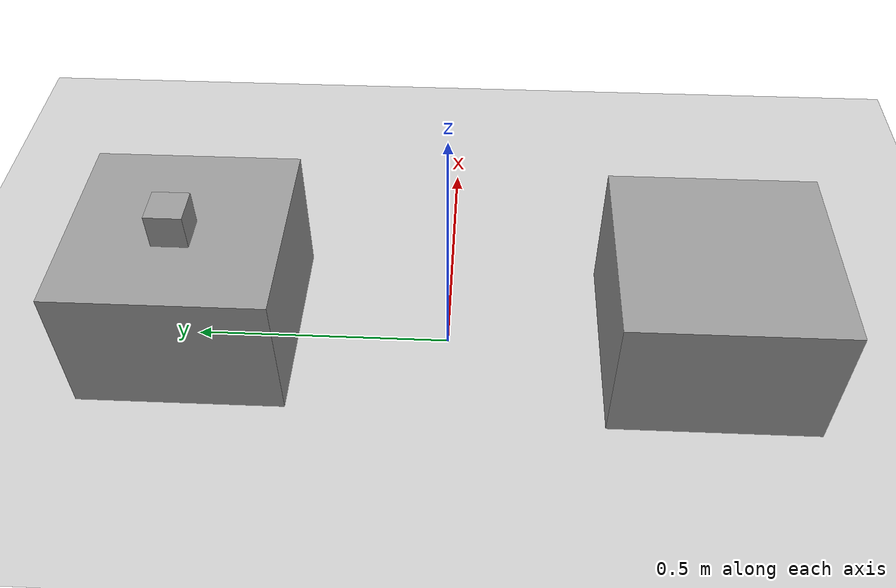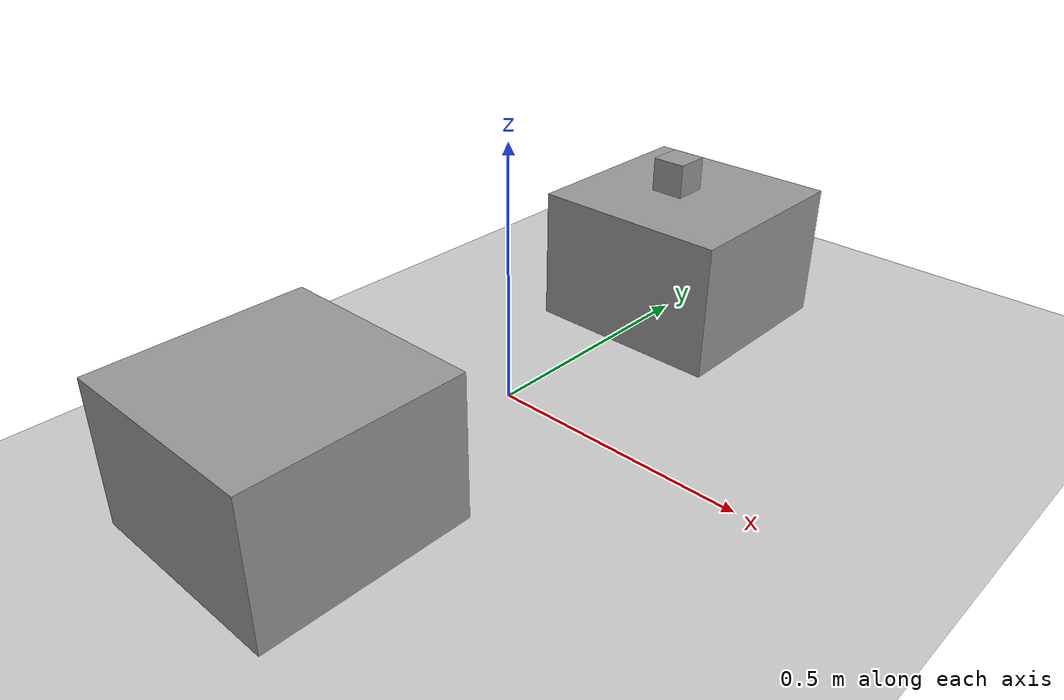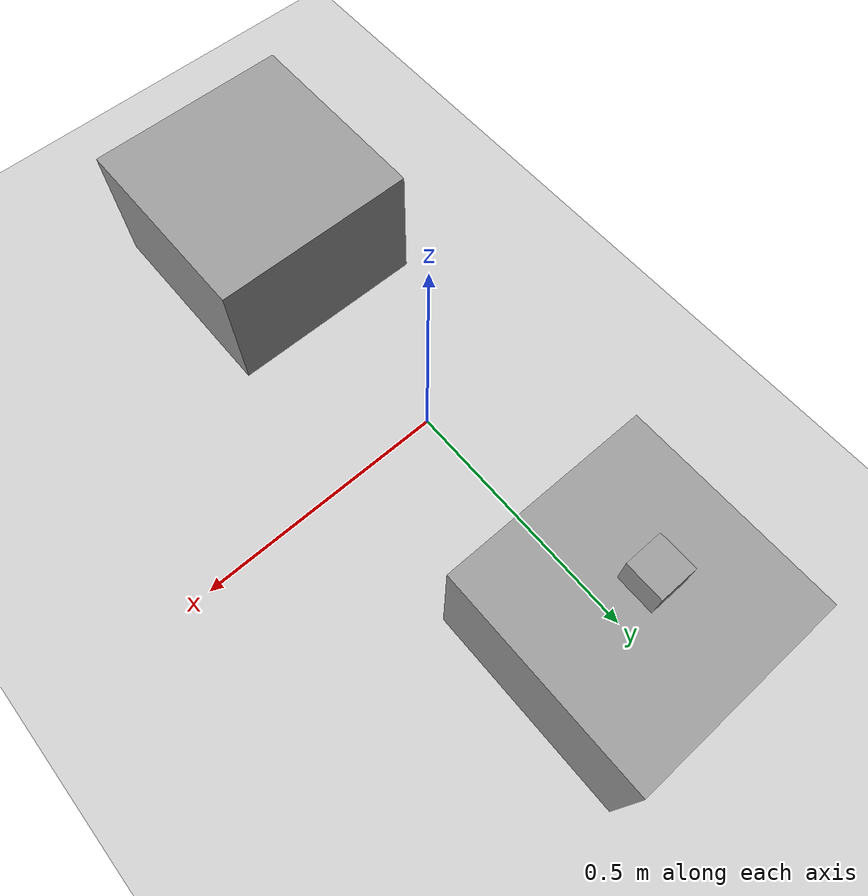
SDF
<sdf version="1.7">
 <world name="default">
  <model name="ground_plane">
   <static>1</static>
   <link name="link">
    <collision name="collision">
     <geometry><plane><normal>0 0 1</normal><size>100 100</size></plane></geometry>
     <surface>
      <contact><collide_bitmask>65535</collide_bitmask></contact>
      <friction><ode><mu>100</mu><mu2>50</mu2></ode></friction>
     </surface>
    </collision>
    <visual name="visual">
     <cast_shadows>0</cast_shadows>
     <geometry><plane><normal>0 0 1</normal><size>100 100</size></plane></geometry>
     <material>
      <script><uri>file://media/materials/scripts/gazebo.material</uri><name>Gazebo/Grey</name></script>
     </material>
    </visual>
   </link>
  </model>
  <gravity>0 0 -9.8</gravity>
  <magnetic_field>6e-06 2.3e-05 -4.2e-05</magnetic_field>
  <atmosphere type="adiabatic"/>
  <physics type="ode">
   <max_step_size>0.001</max_step_size>
   <real_time_factor>1</real_time_factor>
   <real_time_update_rate>1000</real_time_update_rate>
  </physics>
  <scene><ambient>0.4 0.4 0.4 1</ambient><background>0.7 0.7 0.7 1</background><shadows>1</shadows></scene>
  <spherical_coordinates>
   <surface_model>EARTH_WGS84</surface_model>
   <latitude_deg>0</latitude_deg>
   <longitude_deg>0</longitude_deg>
   <elevation>0</elevation>
   <heading_deg>0</heading_deg>
  </spherical_coordinates>
  <model name="unit_box">
   <pose>0.001144 0.499967 0.307531 1.1e-05 1e-05 -0.002016</pose>
   <link name="link">
    <inertial>
     <mass>1</mass>
     <inertia>
      <ixx>0.166667</ixx>
      <ixy>0</ixy>
      <ixz>0</ixz>
      <iyy>0.166667</iyy>
      <iyz>0</iyz>
      <izz>0.166667</izz>
     </inertia>
    </inertial>
    <collision name="collision">
     <geometry><box><size>0.0694035 0.0694035 0.0694035</size></box></geometry>
    </collision>
    <visual name="visual">
     <geometry><box><size>0.0694035 0.0694035 0.0694035</size></box></geometry>
     <material>
      <script><name>Gazebo/Grey</name><uri>file://media/materials/scripts/gazebo.material</uri></script>
     </material>
    </visual>
   </link>
  </model>
  <model name="unit_box_0">
   <pose>0.023551 0.50048 0.136414 2e-06 1e-06 -2.5e-05</pose>
   <link name="link">
    <inertial>
     <mass>1</mass>
     <inertia>
      <ixx>0.166667</ixx>
      <ixy>0</ixy>
      <ixz>0</ixz>
      <iyy>0.166667</iyy>
      <iyz>0</iyz>
      <izz>0.166667</izz>
     </inertia>
    </inertial>
    <collision name="collision"><geometry><box><size>0.39911 0.39911 0.272871</size></box></geometry></collision>
    <visual name="visual">
     <geometry><box><size>0.39911 0.39911 0.272871</size></box></geometry>
     <material>
      <script><name>Gazebo/Grey</name><uri>file://media/materials/scripts/gazebo.material</uri></script>
     </material>
    </visual>
   </link>
  </model>
  <model name="unit_box_0_clone">
   <pose>0 -0.5 0.136434 0 -0 2e-06</pose>
   <link name="link">
    <inertial>
     <mass>1</mass>
     <inertia>
      <ixx>0.166667</ixx>
      <ixy>0</ixy>
      <ixz>0</ixz>
      <iyy>0.166667</iyy>
      <iyz>0</iyz>
      <izz>0.166667</izz>
     </inertia>
    </inertial>
    <collision name="collision"><geometry><box><size>0.39911 0.39911 0.272868</size></box></geometry></collision>
    <visual name="visual">
     <geometry><box><size>0.39911 0.39911 0.272868</size></box></geometry>
     <material>
      <script><name>Gazebo/Grey</name><uri>file://media/materials/scripts/gazebo.material</uri></script>
     </material>
    </visual>
   </link>
  </model>
  <light name="sun" type="directional">
   <pose>-10.113 3.27665 10 0 -0 0</pose>
   <diffuse>0.8 0.8 0.8 1</diffuse>
   <specular>0.2 0.2 0.2 1</specular>
   <attenuation>
    <range>1000</range>
    <constant>0.9</constant>
    <linear>0.01</linear>
    <quadratic>0.001</quadratic>
   </attenuation>
   <direction>-0.5 0.1 -0.9</direction>
  </light>
 </world>
</sdf>
